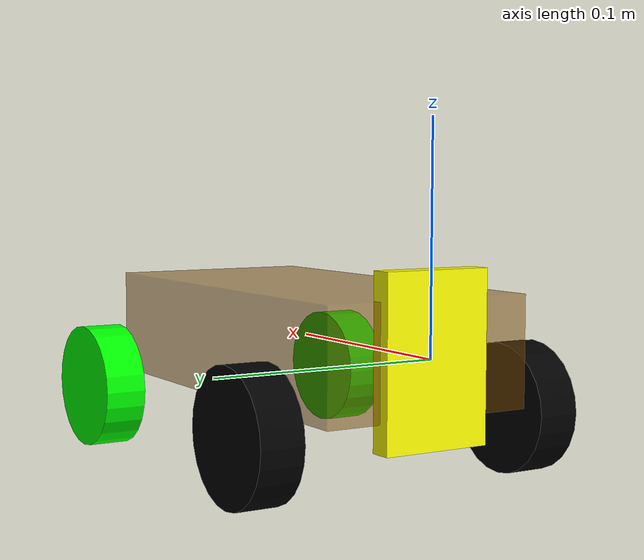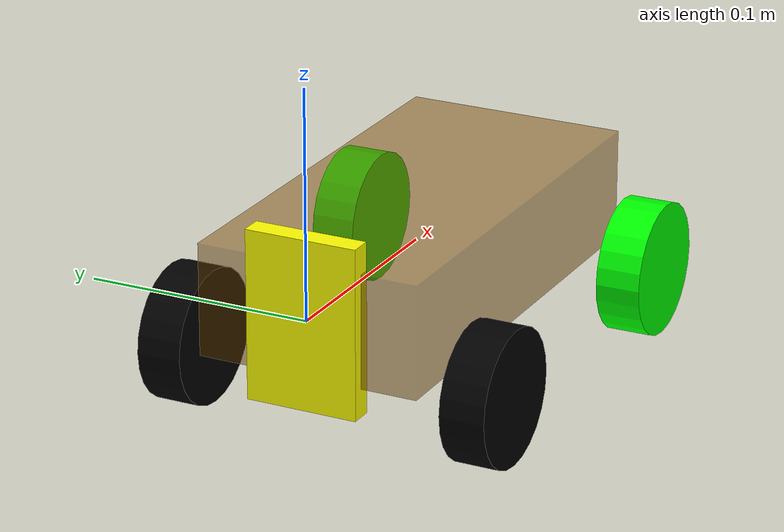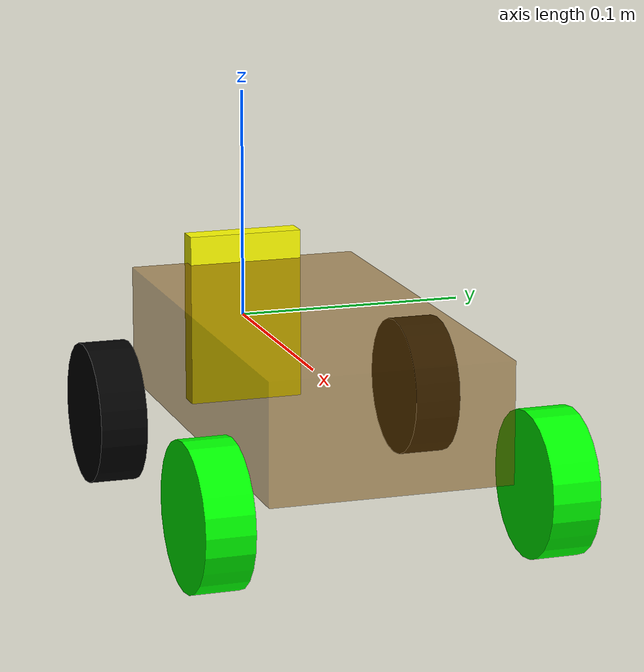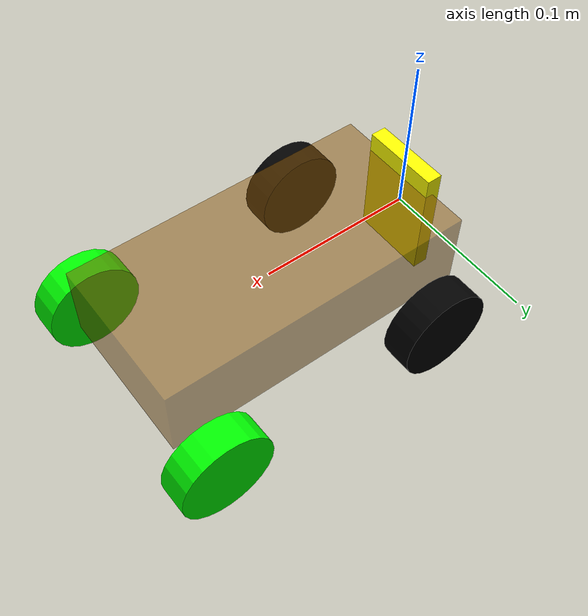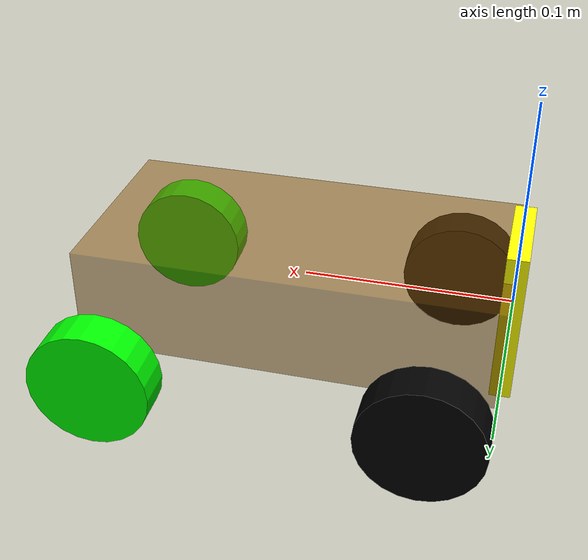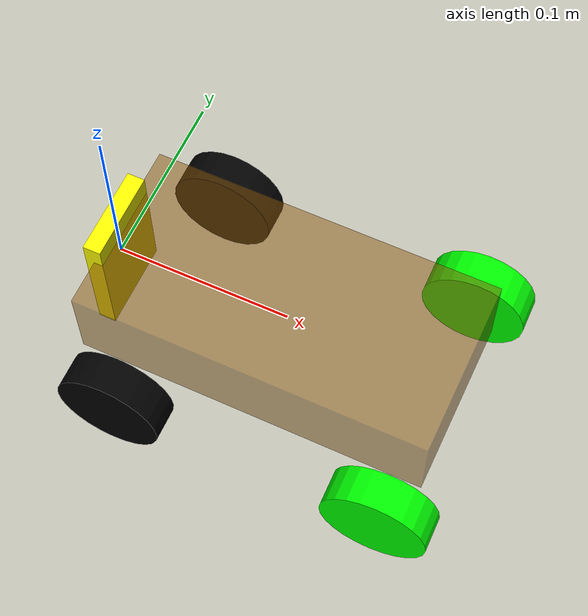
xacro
<!-- 根标签，必须声明 xmlns:xacro -->
<robot name="my_base" xmlns:xacro="http://www.ros.org/wiki/xacro">
  <!-- 封装变量、常量 -->
  <!-- PI 值设置精度需要高一些，否则后续车轮翻转量计算时，可能会出现肉眼不能察觉的车轮倾斜，从而导致模型抖动 -->
  <xacro:property name="PI" value="3.1415926" />
  <!-- 宏:黑色设置 -->
  <material name="black">
    <color rgba="0.0 0.0 0.0 1.0" />
  </material>
  <material name="green">
    <color rgba="0.0 1.0 0.0 1.0" />
  </material>
  <!-- 底盘属性 -->
  <xacro:property name="base_link_length" value="0.2" />
  <xacro:property name="base_link_width" value="0.1" />
  <xacro:property name="base_link_height" value="0.05" />
  <xacro:property name="base_link_m" value="20.0" /> <!-- 质量  -->

  <!-- 驱动轮属性 -->
  <xacro:property name="wheel_radius" value="0.03" /><!-- 半径 -->
  <xacro:property name="wheel_length" value="0.02" /><!-- 宽度 -->
  <xacro:property name="wheel_m" value="3.0" /> <!-- 质量  -->

  <!-- 底盘 -->
  <link name="base_footprint">
    <origin xyz="0 0 0" rpy="0 0 0" />
  </link>

  <link name="base_link">
  </link>
  <joint name="base_joint" type="fixed">
    <parent link="base_footprint" />
    <child link="base_link" />
    <origin xyz="0.0 0.0 0.0" rpy="0 0 0" />
  </joint>

  <link name="chassis_link">
    <visual>
      <geometry>
        <box size="${base_link_length} ${base_link_width} ${base_link_height}" />
      </geometry>
      <origin xyz="0 0 0" rpy="0 0 0" />
      <material name="black">
        <color rgba="0.5 0.3 0.0 0.5" />
      </material>
    </visual>
    <collision>
      <geometry>
        <box size="${base_link_length} ${base_link_width} ${base_link_height}" />
      </geometry>
      <origin xyz="0 0 0" rpy="0 0 0" />
    </collision>
    <xacro:box_inertial_matrix
      m="${base_link_m}"
      l="${base_link_length}"
      w="${base_link_width}"
      h="${base_link_height}" />
  </link>

  <joint name="chassis_joint" type="fixed">
    <parent link="base_link" />
    <child link="chassis_link" />
    <origin xyz="${base_link_length/2} 0.0 0.0" rpy="0 0 0" />
  </joint>

  <gazebo reference="chassis_link">
    <material>Gazebo/Green</material>
    <mu1>0.5</mu1>
    <mu2>0.5</mu2>
  </gazebo>

  <!-- 后轮 -->
  <xacro:macro name="add_back_wheels" params="name1 name2 flag1 flag2">
    <link name="${name1}_${name2}_wheel">
      <visual>
        <geometry>
          <cylinder radius="${wheel_radius}" length="${wheel_length}" />
        </geometry>
        <material name="black" />
      </visual>
      <collision>
        <geometry>
          <cylinder radius="${wheel_radius}" length="${wheel_length}" />
        </geometry>
      </collision>
      <xacro:cylinder_inertial_matrix
        m="${wheel_m}"
        r="${wheel_radius}"
        h="${wheel_length}" />
    </link>

    <joint name="${name1}_${name2}_wheel_joint" type="continuous">
      <parent link="chassis_link" />
      <child link="${name1}_${name2}_wheel" />
      <origin
        xyz="
        ${flag2 * (base_link_length/2 - wheel_radius)}
        ${flag1 * (base_link_width/2 + wheel_length)}
        ${- wheel_radius}"
        rpy="${flag1 * PI/2} 0.0 0.0"
      />
      <axis xyz="0 0 ${-flag1}" />
      <dynamics damping="0.5" friction="0.8" />
      <limit effort="200" velocity="10" />
    </joint>

    <gazebo reference="${name1}_${name2}_wheel">
      <material>Gazebo/Red</material>
      <mu1>1.0</mu1>
      <mu2>1.0</mu2>
    </gazebo>
  </xacro:macro>

  <!-- 前轮 -->
  <xacro:macro name="add_front_wheels" params="name1 name2 flag1 flag2">
    <!-- 转向机构 -->
    <link name="${name1}_${name2}_wheel_steering">
      <inertial>
        <mass value="0.1" />
        <inertia ixx="0.1" ixy="0.0" ixz="0.0" iyy="0.1" iyz="0.0" izz="0.1" />
      </inertial>
    </link>

    <!-- 前轮转向 -->
    <joint name="${name1}_${name2}_steering_joint" type="revolute">
      <parent link="chassis_link" />
      <child link="${name1}_${name2}_wheel_steering" />
      <origin
        xyz="
        ${flag2 * (base_link_length/2 - wheel_radius/2)}
        ${flag1 * (base_link_width/2 + wheel_length)}
        ${-wheel_radius}"
        rpy="0.0 0.0 0.0"
      />
      <axis xyz="0 0 1" />
      <dynamics damping="0.5" friction="0.8" />
      <limit upper="0.6" lower="-0.6" effort="-1.0" velocity="-1.0" />
    </joint>

    <!-- 轮子 -->
    <link name="${name1}_${name2}_wheel">
      <visual>
        <geometry>
          <cylinder radius="${wheel_radius}" length="${wheel_length}" />
        </geometry>
        <material name="green" />
      </visual>
      <collision>
        <geometry>
          <cylinder radius="${wheel_radius}" length="${wheel_length}" />
        </geometry>
      </collision>
      <xacro:cylinder_inertial_matrix
        m="${wheel_m}"
        r="${wheel_radius}"
        h="${wheel_length}" />
    </link>

    <joint name="${name1}_${name2}_wheel_joint" type="continuous">
      <parent link="${name1}_${name2}_wheel_steering" />
      <child link="${name1}_${name2}_wheel" />
      <origin
        xyz="0.0 0.0 0.0"
        rpy="${flag1 * PI/2} 0.0 0.016976" />
      <axis xyz="0 0 ${-flag1}" />
      <dynamics damping="0.5" friction="0.8" />
      <limit lower="-3.14159" upper="3.14159" effort="200" velocity="-1" />
    </joint>

    <gazebo reference="${name1}_${name2}_wheel">
      <material>Gazebo/Yellow</material>
      <mu1>1.0</mu1>
      <mu2>1.0</mu2>
    </gazebo>

    <gazebo reference="${name1}_${name2}_wheel_steering">
      <material>Gazebo/Black</material>
      <mu1>1.0</mu1>
      <mu2>1.0</mu2>
    </gazebo>
  </xacro:macro>

  <xacro:add_front_wheels name1="left" name2="front" flag1="1" flag2="1" />
  <xacro:add_front_wheels name1="right" name2="front" flag1="-1" flag2="1" />
  <xacro:add_back_wheels name1="left" name2="back" flag1="1" flag2="-1" />
  <xacro:add_back_wheels name1="right" name2="back" flag1="-1" flag2="-1" />

  <!-- 虚拟方向盘 -->
  <!-- Virtual Steering wheel -->
  <link name="virtual_steer_link">
    <visual>
      <origin xyz="0.0 0.0 0.0" rpy="0.0 0.0 0.0" />
      <geometry>
        <box size="0.01 0.05 0.075" />
      </geometry>
      <material name="">
        <color rgba="1.0 1.0 0.0 1" />
      </material>
    </visual>
    <inertial>
      <origin xyz="0.0 0.0 0.0" rpy="0.0 0.0 0.0" />
      <mass value="0.001" />
      <inertia ixx="0.0" ixy="0.0" ixz="0.0" iyy="0.0" iyz="0.0" izz="0.0" />
    </inertial>
  </link>
  <joint name="virtual_steering_wheel_joint" type="revolute">
    <origin xyz="${-base_link_length/2} 0.0 0.0" rpy="0.0 0.0 0.0" />
    <parent link="chassis_link" />
    <child link="virtual_steer_link" />
    <axis xyz="-1 0 0" />
    <limit lower="-3" upper="3" effort="200" velocity="20" />
  </joint>

</robot>
